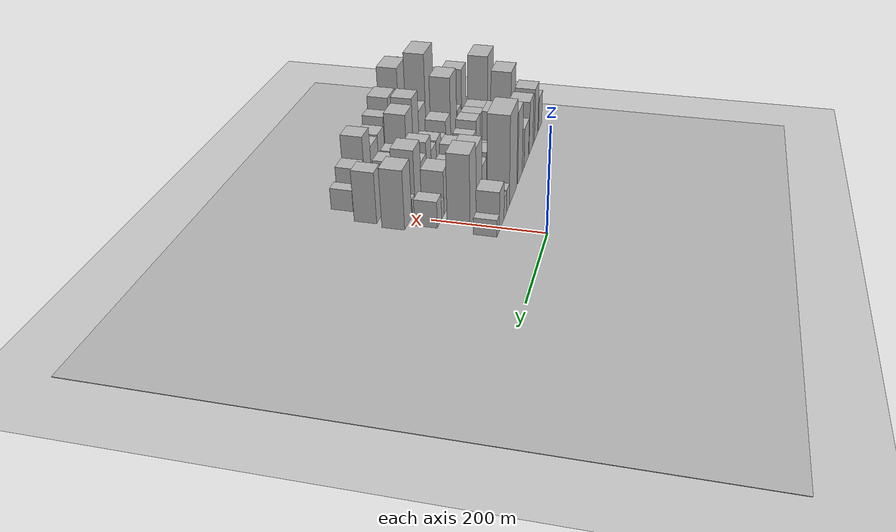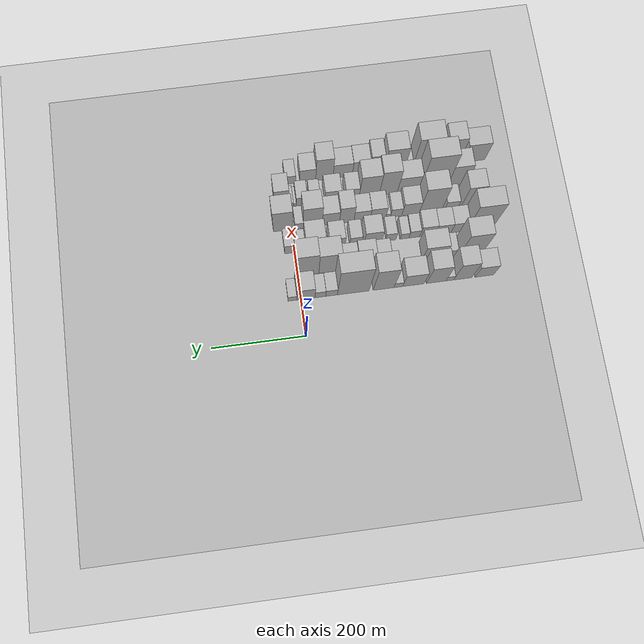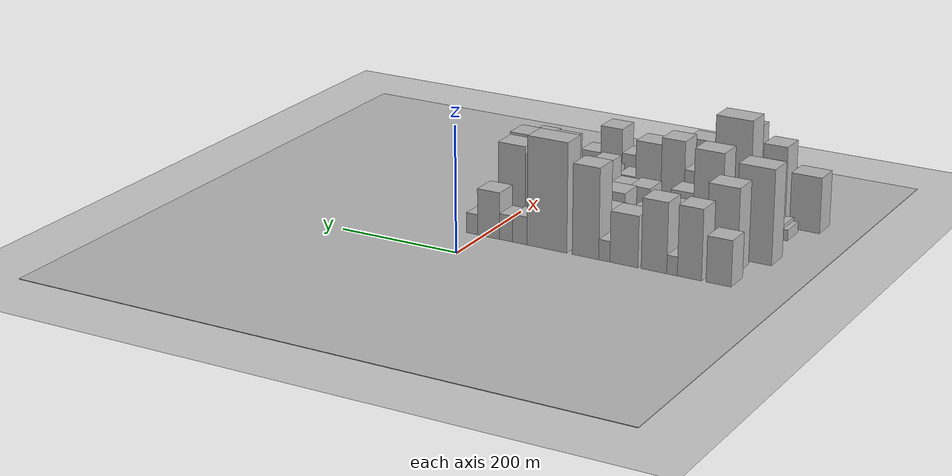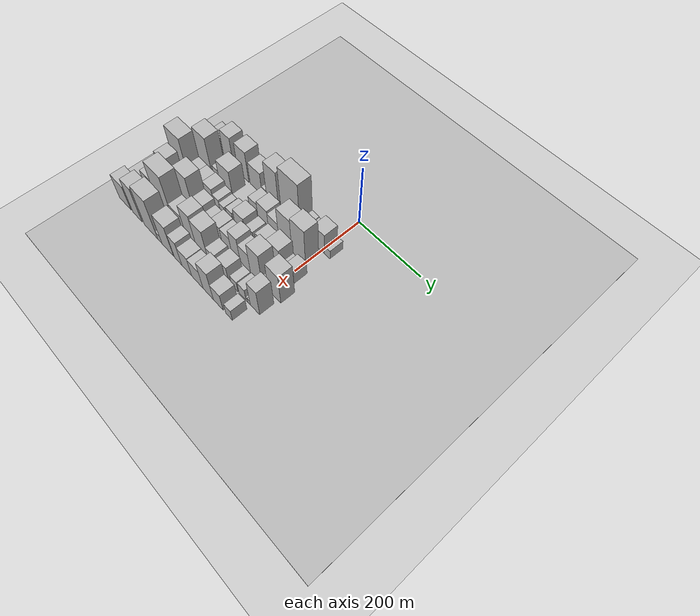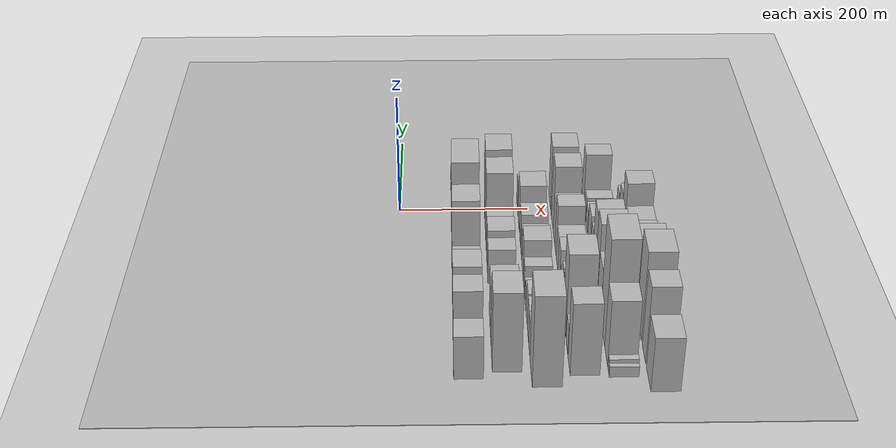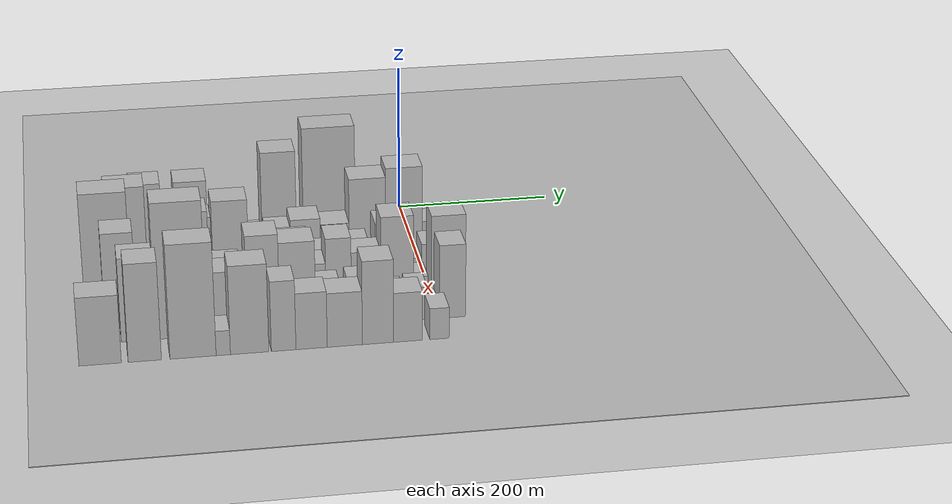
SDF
<sdf version="1.6">
 <world name="default">
  <include><name>ground_plane_1</name><uri>model://HANNAS_ground_plane</uri></include>
  <include>
   <name>ground_plane_2</name>
   <uri>model://HANNAS_ground_plane</uri>
   <pose>100 0 0  0 0 0</pose>
  </include>
  <model name="building_14">
   <static>1</static>
   <pose>100.0000 -390.6195 0 0.000000 0.000000 0.000000</pose>
   <link name="link">
    <pose>0 0 36.00 0 0 0</pose>
    <collision name="collision"><geometry><box><size>40.0000 39.7791 72.0000</size></box></geometry></collision>
    <visual name="visual">
     <cast_shadows>0</cast_shadows>
     <geometry><box><size>40.0000 39.7791 72.0000</size></box></geometry>
     <material>
      <script>
       <uri>model://HANNAS_wall/materials/scripts</uri>
       <uri>model://HANNAS_wall/materials/textures</uri>
       <name>vrc/HANNAS_wall</name>
      </script>
     </material>
    </visual>
   </link>
  </model>
  <model name="building_15">
   <static>1</static>
   <pose>100.0000 -344.3302 0 0.000000 0.000000 0.000000</pose>
   <link name="link">
    <pose>0 0 55.50 0 0 0</pose>
    <collision name="collision"><geometry><box><size>40.0000 38.7995 111.0000</size></box></geometry></collision>
    <visual name="visual">
     <cast_shadows>0</cast_shadows>
     <geometry><box><size>40.0000 38.7995 111.0000</size></box></geometry>
     <material>
      <script>
       <uri>model://HANNAS_wall/materials/scripts</uri>
       <uri>model://HANNAS_wall/materials/textures</uri>
       <name>vrc/HANNAS_wall</name>
      </script>
     </material>
    </visual>
   </link>
  </model>
  <model name="building_16">
   <static>1</static>
   <pose>100.0000 -316.4621 0 0.000000 0.000000 0.000000</pose>
   <link name="link">
    <pose>0 0 15.00 0 0 0</pose>
    <collision name="collision"><geometry><box><size>40.0000 16.9368 30.0000</size></box></geometry></collision>
    <visual name="visual">
     <cast_shadows>0</cast_shadows>
     <geometry><box><size>40.0000 16.9368 30.0000</size></box></geometry>
     <material>
      <script>
       <uri>model://HANNAS_wall/materials/scripts</uri>
       <uri>model://HANNAS_wall/materials/textures</uri>
       <name>vrc/HANNAS_wall</name>
      </script>
     </material>
    </visual>
   </link>
  </model>
  <model name="building_17">
   <static>1</static>
   <pose>100.0000 -287.1883 0 0.000000 0.000000 0.000000</pose>
   <link name="link">
    <pose>0 0 55.50 0 0 0</pose>
    <collision name="collision"><geometry><box><size>40.0000 41.6107 111.0000</size></box></geometry></collision>
    <visual name="visual">
     <cast_shadows>0</cast_shadows>
     <geometry><box><size>40.0000 41.6107 111.0000</size></box></geometry>
     <material>
      <script>
       <uri>model://HANNAS_wall/materials/scripts</uri>
       <uri>model://HANNAS_wall/materials/textures</uri>
       <name>vrc/HANNAS_wall</name>
      </script>
     </material>
    </visual>
   </link>
  </model>
  <model name="building_18">
   <static>1</static>
   <pose>100.0000 -238.3716 0 0.000000 0.000000 0.000000</pose>
   <link name="link">
    <pose>0 0 40.50 0 0 0</pose>
    <collision name="collision"><geometry><box><size>40.0000 46.0228 81.0000</size></box></geometry></collision>
    <visual name="visual">
     <cast_shadows>0</cast_shadows>
     <geometry><box><size>40.0000 46.0228 81.0000</size></box></geometry>
     <material>
      <script>
       <uri>model://HANNAS_wall/materials/scripts</uri>
       <uri>model://HANNAS_wall/materials/textures</uri>
       <name>vrc/HANNAS_wall</name>
      </script>
     </material>
    </visual>
   </link>
  </model>
  <model name="building_19">
   <static>1</static>
   <pose>100.0000 -206.1027 0 0.000000 0.000000 0.000000</pose>
   <link name="link">
    <pose>0 0 16.50 0 0 0</pose>
    <collision name="collision"><geometry><box><size>40.0000 18.5150 33.0000</size></box></geometry></collision>
    <visual name="visual">
     <cast_shadows>0</cast_shadows>
     <geometry><box><size>40.0000 18.5150 33.0000</size></box></geometry>
     <material>
      <script>
       <uri>model://HANNAS_wall/materials/scripts</uri>
       <uri>model://HANNAS_wall/materials/textures</uri>
       <name>vrc/HANNAS_wall</name>
      </script>
     </material>
    </visual>
   </link>
  </model>
  <model name="building_20">
   <static>1</static>
   <pose>100.0000 -174.6314 0 0.000000 0.000000 0.000000</pose>
   <link name="link">
    <pose>0 0 72.00 0 0 0</pose>
    <collision name="collision"><geometry><box><size>40.0000 44.4275 144.0000</size></box></geometry></collision>
    <visual name="visual">
     <cast_shadows>0</cast_shadows>
     <geometry><box><size>40.0000 44.4275 144.0000</size></box></geometry>
     <material>
      <script>
       <uri>model://HANNAS_wall/materials/scripts</uri>
       <uri>model://HANNAS_wall/materials/textures</uri>
       <name>vrc/HANNAS_wall</name>
      </script>
     </material>
    </visual>
   </link>
  </model>
  <model name="building_21">
   <static>1</static>
   <pose>100.0000 -109.7464 0 0.000000 0.000000 0.000000</pose>
   <link name="link">
    <pose>0 0 87.00 0 0 0</pose>
    <collision name="collision"><geometry><box><size>40.0000 67.3426 174.0000</size></box></geometry></collision>
    <visual name="visual">
     <cast_shadows>0</cast_shadows>
     <geometry><box><size>40.0000 67.3426 174.0000</size></box></geometry>
     <material>
      <script>
       <uri>model://HANNAS_wall/materials/scripts</uri>
       <uri>model://HANNAS_wall/materials/textures</uri>
       <name>vrc/HANNAS_wall</name>
      </script>
     </material>
    </visual>
   </link>
  </model>
  <model name="building_22">
   <static>1</static>
   <pose>100.0000 -63.6929 0 0.000000 0.000000 0.000000</pose>
   <link name="link">
    <pose>0 0 22.50 0 0 0</pose>
    <collision name="collision"><geometry><box><size>40.0000 24.7644 45.0000</size></box></geometry></collision>
    <visual name="visual">
     <cast_shadows>0</cast_shadows>
     <geometry><box><size>40.0000 24.7644 45.0000</size></box></geometry>
     <material>
      <script>
       <uri>model://HANNAS_wall/materials/scripts</uri>
       <uri>model://HANNAS_wall/materials/textures</uri>
       <name>vrc/HANNAS_wall</name>
      </script>
     </material>
    </visual>
   </link>
  </model>
  <model name="building_23">
   <static>1</static>
   <pose>100.0000 -40.1029 0 0.000000 0.000000 0.000000</pose>
   <link name="link">
    <pose>0 0 21.00 0 0 0</pose>
    <collision name="collision"><geometry><box><size>40.0000 22.4156 42.0000</size></box></geometry></collision>
    <visual name="visual">
     <cast_shadows>0</cast_shadows>
     <geometry><box><size>40.0000 22.4156 42.0000</size></box></geometry>
     <material>
      <script>
       <uri>model://HANNAS_wall/materials/scripts</uri>
       <uri>model://HANNAS_wall/materials/textures</uri>
       <name>vrc/HANNAS_wall</name>
      </script>
     </material>
    </visual>
   </link>
  </model>
  <model name="building_24">
   <static>1</static>
   <pose>100.0000 -9.5780 0 0.000000 0.000000 0.000000</pose>
   <link name="link">
    <pose>0 0 37.50 0 0 0</pose>
    <collision name="collision"><geometry><box><size>40.0000 38.6341 75.0000</size></box></geometry></collision>
    <visual name="visual">
     <cast_shadows>0</cast_shadows>
     <geometry><box><size>40.0000 38.6341 75.0000</size></box></geometry>
     <material>
      <script>
       <uri>model://HANNAS_wall/materials/scripts</uri>
       <uri>model://HANNAS_wall/materials/textures</uri>
       <name>vrc/HANNAS_wall</name>
      </script>
     </material>
    </visual>
   </link>
  </model>
  <model name="building_25">
   <static>1</static>
   <pose>100.0000 19.1603 0 0.000000 0.000000 0.000000</pose>
   <link name="link">
    <pose>0 0 16.50 0 0 0</pose>
    <collision name="collision"><geometry><box><size>40.0000 18.8425 33.0000</size></box></geometry></collision>
    <visual name="visual">
     <cast_shadows>0</cast_shadows>
     <geometry><box><size>40.0000 18.8425 33.0000</size></box></geometry>
     <material>
      <script>
       <uri>model://HANNAS_wall/materials/scripts</uri>
       <uri>model://HANNAS_wall/materials/textures</uri>
       <name>vrc/HANNAS_wall</name>
      </script>
     </material>
    </visual>
   </link>
  </model>
  <model name="building_63">
   <static>1</static>
   <pose>152.0000 -371.8332 0 0.000000 0.000000 0.000000</pose>
   <link name="link">
    <pose>0 0 66.00 0 0 0</pose>
    <collision name="collision"><geometry><box><size>40.0000 49.9071 132.0000</size></box></geometry></collision>
    <visual name="visual">
     <cast_shadows>0</cast_shadows>
     <geometry><box><size>40.0000 49.9071 132.0000</size></box></geometry>
     <material>
      <script>
       <uri>model://HANNAS_wall/materials/scripts</uri>
       <uri>model://HANNAS_wall/materials/textures</uri>
       <name>vrc/HANNAS_wall</name>
      </script>
     </material>
    </visual>
   </link>
  </model>
  <model name="building_64">
   <static>1</static>
   <pose>152.0000 -326.9724 0 0.000000 0.000000 0.000000</pose>
   <link name="link">
    <pose>0 0 21.00 0 0 0</pose>
    <collision name="collision"><geometry><box><size>40.0000 23.8145 42.0000</size></box></geometry></collision>
    <visual name="visual">
     <cast_shadows>0</cast_shadows>
     <geometry><box><size>40.0000 23.8145 42.0000</size></box></geometry>
     <material>
      <script>
       <uri>model://HANNAS_wall/materials/scripts</uri>
       <uri>model://HANNAS_wall/materials/textures</uri>
       <name>vrc/HANNAS_wall</name>
      </script>
     </material>
    </visual>
   </link>
  </model>
  <model name="building_65">
   <static>1</static>
   <pose>152.0000 -290.4627 0 0.000000 0.000000 0.000000</pose>
   <link name="link">
    <pose>0 0 42.00 0 0 0</pose>
    <collision name="collision"><geometry><box><size>40.0000 49.2048 84.0000</size></box></geometry></collision>
    <visual name="visual">
     <cast_shadows>0</cast_shadows>
     <geometry><box><size>40.0000 49.2048 84.0000</size></box></geometry>
     <material>
      <script>
       <uri>model://HANNAS_wall/materials/scripts</uri>
       <uri>model://HANNAS_wall/materials/textures</uri>
       <name>vrc/HANNAS_wall</name>
      </script>
     </material>
    </visual>
   </link>
  </model>
  <model name="building_66">
   <static>1</static>
   <pose>152.0000 -181.2605 0 0.000000 0.000000 0.000000</pose>
   <link name="link">
    <pose>0 0 30.00 0 0 0</pose>
    <collision name="collision"><geometry><box><size>40.0000 31.0666 60.0000</size></box></geometry></collision>
    <visual name="visual">
     <cast_shadows>0</cast_shadows>
     <geometry><box><size>40.0000 31.0666 60.0000</size></box></geometry>
     <material>
      <script>
       <uri>model://HANNAS_wall/materials/scripts</uri>
       <uri>model://HANNAS_wall/materials/textures</uri>
       <name>vrc/HANNAS_wall</name>
      </script>
     </material>
    </visual>
   </link>
  </model>
  <model name="building_67">
   <static>1</static>
   <pose>152.0000 -146.7193 0 0.000000 0.000000 0.000000</pose>
   <link name="link">
    <pose>0 0 36.00 0 0 0</pose>
    <collision name="collision"><geometry><box><size>40.0000 38.0157 72.0000</size></box></geometry></collision>
    <visual name="visual">
     <cast_shadows>0</cast_shadows>
     <geometry><box><size>40.0000 38.0157 72.0000</size></box></geometry>
     <material>
      <script>
       <uri>model://HANNAS_wall/materials/scripts</uri>
       <uri>model://HANNAS_wall/materials/textures</uri>
       <name>vrc/HANNAS_wall</name>
      </script>
     </material>
    </visual>
   </link>
  </model>
  <model name="building_68">
   <static>1</static>
   <pose>152.0000 -109.2547 0 0.000000 0.000000 0.000000</pose>
   <link name="link">
    <pose>0 0 31.50 0 0 0</pose>
    <collision name="collision"><geometry><box><size>40.0000 36.9136 63.0000</size></box></geometry></collision>
    <visual name="visual">
     <cast_shadows>0</cast_shadows>
     <geometry><box><size>40.0000 36.9136 63.0000</size></box></geometry>
     <material>
      <script>
       <uri>model://HANNAS_wall/materials/scripts</uri>
       <uri>model://HANNAS_wall/materials/textures</uri>
       <name>vrc/HANNAS_wall</name>
      </script>
     </material>
    </visual>
   </link>
  </model>
  <model name="building_69">
   <static>1</static>
   <pose>152.0000 -67.3861 0 0.000000 0.000000 0.000000</pose>
   <link name="link">
    <pose>0 0 61.50 0 0 0</pose>
    <collision name="collision"><geometry><box><size>40.0000 46.8236 123.0000</size></box></geometry></collision>
    <visual name="visual">
     <cast_shadows>0</cast_shadows>
     <geometry><box><size>40.0000 46.8236 123.0000</size></box></geometry>
     <material>
      <script>
       <uri>model://HANNAS_wall/materials/scripts</uri>
       <uri>model://HANNAS_wall/materials/textures</uri>
       <name>vrc/HANNAS_wall</name>
      </script>
     </material>
    </visual>
   </link>
  </model>
  <model name="building_70">
   <static>1</static>
   <pose>152.0000 -20.4230 0 0.000000 0.000000 0.000000</pose>
   <link name="link">
    <pose>0 0 67.50 0 0 0</pose>
    <collision name="collision"><geometry><box><size>40.0000 47.1026 135.0000</size></box></geometry></collision>
    <visual name="visual">
     <cast_shadows>0</cast_shadows>
     <geometry><box><size>40.0000 47.1026 135.0000</size></box></geometry>
     <material>
      <script>
       <uri>model://HANNAS_wall/materials/scripts</uri>
       <uri>model://HANNAS_wall/materials/textures</uri>
       <name>vrc/HANNAS_wall</name>
      </script>
     </material>
    </visual>
   </link>
  </model>
  <model name="building_107">
   <static>1</static>
   <pose>204.0000 -399.4127 0 0.000000 0.000000 0.000000</pose>
   <link name="link">
    <pose>0 0 75.00 0 0 0</pose>
    <collision name="collision"><geometry><box><size>40.0000 57.7861 150.0000</size></box></geometry></collision>
    <visual name="visual">
     <cast_shadows>0</cast_shadows>
     <geometry><box><size>40.0000 57.7861 150.0000</size></box></geometry>
     <material>
      <script>
       <uri>model://HANNAS_wall/materials/scripts</uri>
       <uri>model://HANNAS_wall/materials/textures</uri>
       <name>vrc/HANNAS_wall</name>
      </script>
     </material>
    </visual>
   </link>
  </model>
  <model name="building_108">
   <static>1</static>
   <pose>204.0000 -353.8199 0 0.000000 0.000000 0.000000</pose>
   <link name="link">
    <pose>0 0 28.50 0 0 0</pose>
    <collision name="collision"><geometry><box><size>40.0000 33.3994 57.0000</size></box></geometry></collision>
    <visual name="visual">
     <cast_shadows>0</cast_shadows>
     <geometry><box><size>40.0000 33.3994 57.0000</size></box></geometry>
     <material>
      <script>
       <uri>model://HANNAS_wall/materials/scripts</uri>
       <uri>model://HANNAS_wall/materials/textures</uri>
       <name>vrc/HANNAS_wall</name>
      </script>
     </material>
    </visual>
   </link>
  </model>
  <model name="building_109">
   <static>1</static>
   <pose>204.0000 -320.0826 0 0.000000 0.000000 0.000000</pose>
   <link name="link">
    <pose>0 0 28.50 0 0 0</pose>
    <collision name="collision"><geometry><box><size>40.0000 34.0753 57.0000</size></box></geometry></collision>
    <visual name="visual">
     <cast_shadows>0</cast_shadows>
     <geometry><box><size>40.0000 34.0753 57.0000</size></box></geometry>
     <material>
      <script>
       <uri>model://HANNAS_wall/materials/scripts</uri>
       <uri>model://HANNAS_wall/materials/textures</uri>
       <name>vrc/HANNAS_wall</name>
      </script>
     </material>
    </visual>
   </link>
  </model>
  <model name="building_110">
   <static>1</static>
   <pose>204.0000 -286.0945 0 0.000000 0.000000 0.000000</pose>
   <link name="link">
    <pose>0 0 30.00 0 0 0</pose>
    <collision name="collision"><geometry><box><size>40.0000 33.9009 60.0000</size></box></geometry></collision>
    <visual name="visual">
     <cast_shadows>0</cast_shadows>
     <geometry><box><size>40.0000 33.9009 60.0000</size></box></geometry>
     <material>
      <script>
       <uri>model://HANNAS_wall/materials/scripts</uri>
       <uri>model://HANNAS_wall/materials/textures</uri>
       <name>vrc/HANNAS_wall</name>
      </script>
     </material>
    </visual>
   </link>
  </model>
  <model name="building_111">
   <static>1</static>
   <pose>204.0000 -257.3165 0 0.000000 0.000000 0.000000</pose>
   <link name="link">
    <pose>0 0 21.00 0 0 0</pose>
    <collision name="collision"><geometry><box><size>40.0000 23.6551 42.0000</size></box></geometry></collision>
    <visual name="visual">
     <cast_shadows>0</cast_shadows>
     <geometry><box><size>40.0000 23.6551 42.0000</size></box></geometry>
     <material>
      <script>
       <uri>model://HANNAS_wall/materials/scripts</uri>
       <uri>model://HANNAS_wall/materials/textures</uri>
       <name>vrc/HANNAS_wall</name>
      </script>
     </material>
    </visual>
   </link>
  </model>
  <model name="building_112">
   <static>1</static>
   <pose>204.0000 -235.9057 0 0.000000 0.000000 0.000000</pose>
   <link name="link">
    <pose>0 0 16.50 0 0 0</pose>
    <collision name="collision"><geometry><box><size>40.0000 19.1666 33.0000</size></box></geometry></collision>
    <visual name="visual">
     <cast_shadows>0</cast_shadows>
     <geometry><box><size>40.0000 19.1666 33.0000</size></box></geometry>
     <material>
      <script>
       <uri>model://HANNAS_wall/materials/scripts</uri>
       <uri>model://HANNAS_wall/materials/textures</uri>
       <name>vrc/HANNAS_wall</name>
      </script>
     </material>
    </visual>
   </link>
  </model>
  <model name="building_113">
   <static>1</static>
   <pose>204.0000 -205.6547 0 0.000000 0.000000 0.000000</pose>
   <link name="link">
    <pose>0 0 22.50 0 0 0</pose>
    <collision name="collision"><geometry><box><size>40.0000 23.3354 45.0000</size></box></geometry></collision>
    <visual name="visual">
     <cast_shadows>0</cast_shadows>
     <geometry><box><size>40.0000 23.3354 45.0000</size></box></geometry>
     <material>
      <script>
       <uri>model://HANNAS_wall/materials/scripts</uri>
       <uri>model://HANNAS_wall/materials/textures</uri>
       <name>vrc/HANNAS_wall</name>
      </script>
     </material>
    </visual>
   </link>
  </model>
  <model name="building_114">
   <static>1</static>
   <pose>204.0000 -190.3510 0 0.000000 0.000000 0.000000</pose>
   <link name="link">
    <pose>0 0 7.50 0 0 0</pose>
    <collision name="collision"><geometry><box><size>40.0000 7.2720 15.0000</size></box></geometry></collision>
    <visual name="visual">
     <cast_shadows>0</cast_shadows>
     <geometry><box><size>40.0000 7.2720 15.0000</size></box></geometry>
     <material>
      <script>
       <uri>model://HANNAS_wall/materials/scripts</uri>
       <uri>model://HANNAS_wall/materials/textures</uri>
       <name>vrc/HANNAS_wall</name>
      </script>
     </material>
    </visual>
   </link>
  </model>
  <model name="building_115">
   <static>1</static>
   <pose>204.0000 -167.6147 0 0.000000 0.000000 0.000000</pose>
   <link name="link">
    <pose>0 0 34.50 0 0 0</pose>
    <collision name="collision"><geometry><box><size>40.0000 38.2006 69.0000</size></box></geometry></collision>
    <visual name="visual">
     <cast_shadows>0</cast_shadows>
     <geometry><box><size>40.0000 38.2006 69.0000</size></box></geometry>
     <material>
      <script>
       <uri>model://HANNAS_wall/materials/scripts</uri>
       <uri>model://HANNAS_wall/materials/textures</uri>
       <name>vrc/HANNAS_wall</name>
      </script>
     </material>
    </visual>
   </link>
  </model>
  <model name="building_116">
   <static>1</static>
   <pose>204.0000 -130.4117 0 0.000000 0.000000 0.000000</pose>
   <link name="link">
    <pose>0 0 25.50 0 0 0</pose>
    <collision name="collision"><geometry><box><size>40.0000 26.2053 51.0000</size></box></geometry></collision>
    <visual name="visual">
     <cast_shadows>0</cast_shadows>
     <geometry><box><size>40.0000 26.2053 51.0000</size></box></geometry>
     <material>
      <script>
       <uri>model://HANNAS_wall/materials/scripts</uri>
       <uri>model://HANNAS_wall/materials/textures</uri>
       <name>vrc/HANNAS_wall</name>
      </script>
     </material>
    </visual>
   </link>
  </model>
  <model name="building_117">
   <static>1</static>
   <pose>204.0000 -90.1696 0 0.000000 0.000000 0.000000</pose>
   <link name="link">
    <pose>0 0 30.00 0 0 0</pose>
    <collision name="collision"><geometry><box><size>40.0000 34.2790 60.0000</size></box></geometry></collision>
    <visual name="visual">
     <cast_shadows>0</cast_shadows>
     <geometry><box><size>40.0000 34.2790 60.0000</size></box></geometry>
     <material>
      <script>
       <uri>model://HANNAS_wall/materials/scripts</uri>
       <uri>model://HANNAS_wall/materials/textures</uri>
       <name>vrc/HANNAS_wall</name>
      </script>
     </material>
    </visual>
   </link>
  </model>
  <model name="building_118">
   <static>1</static>
   <pose>204.0000 -43.9222 0 0.000000 0.000000 0.000000</pose>
   <link name="link">
    <pose>0 0 42.00 0 0 0</pose>
    <collision name="collision"><geometry><box><size>40.0000 42.2157 84.0000</size></box></geometry></collision>
    <visual name="visual">
     <cast_shadows>0</cast_shadows>
     <geometry><box><size>40.0000 42.2157 84.0000</size></box></geometry>
     <material>
      <script>
       <uri>model://HANNAS_wall/materials/scripts</uri>
       <uri>model://HANNAS_wall/materials/textures</uri>
       <name>vrc/HANNAS_wall</name>
      </script>
     </material>
    </visual>
   </link>
  </model>
  <model name="building_119">
   <static>1</static>
   <pose>204.0000 -14.4327 0 0.000000 0.000000 0.000000</pose>
   <link name="link">
    <pose>0 0 16.50 0 0 0</pose>
    <collision name="collision"><geometry><box><size>40.0000 16.7633 33.0000</size></box></geometry></collision>
    <visual name="visual">
     <cast_shadows>0</cast_shadows>
     <geometry><box><size>40.0000 16.7633 33.0000</size></box></geometry>
     <material>
      <script>
       <uri>model://HANNAS_wall/materials/scripts</uri>
       <uri>model://HANNAS_wall/materials/textures</uri>
       <name>vrc/HANNAS_wall</name>
      </script>
     </material>
    </visual>
   </link>
  </model>
  <model name="building_120">
   <static>1</static>
   <pose>204.0000 8.2425 0 0.000000 0.000000 0.000000</pose>
   <link name="link">
    <pose>0 0 25.50 0 0 0</pose>
    <collision name="collision"><geometry><box><size>40.0000 28.5871 51.0000</size></box></geometry></collision>
    <visual name="visual">
     <cast_shadows>0</cast_shadows>
     <geometry><box><size>40.0000 28.5871 51.0000</size></box></geometry>
     <material>
      <script>
       <uri>model://HANNAS_wall/materials/scripts</uri>
       <uri>model://HANNAS_wall/materials/textures</uri>
       <name>vrc/HANNAS_wall</name>
      </script>
     </material>
    </visual>
   </link>
  </model>
  <model name="building_158">
   <static>1</static>
   <pose>256.0000 -385.9003 0 0.000000 0.000000 0.000000</pose>
   <link name="link">
    <pose>0 0 60.00 0 0 0</pose>
    <collision name="collision"><geometry><box><size>40.0000 38.7063 120.0000</size></box></geometry></collision>
    <visual name="visual">
     <cast_shadows>0</cast_shadows>
     <geometry><box><size>40.0000 38.7063 120.0000</size></box></geometry>
     <material>
      <script>
       <uri>model://HANNAS_wall/materials/scripts</uri>
       <uri>model://HANNAS_wall/materials/textures</uri>
       <name>vrc/HANNAS_wall</name>
      </script>
     </material>
    </visual>
   </link>
  </model>
  <model name="building_159">
   <static>1</static>
   <pose>256.0000 -346.1716 0 0.000000 0.000000 0.000000</pose>
   <link name="link">
    <pose>0 0 24.00 0 0 0</pose>
    <collision name="collision"><geometry><box><size>40.0000 28.7510 48.0000</size></box></geometry></collision>
    <visual name="visual">
     <cast_shadows>0</cast_shadows>
     <geometry><box><size>40.0000 28.7510 48.0000</size></box></geometry>
     <material>
      <script>
       <uri>model://HANNAS_wall/materials/scripts</uri>
       <uri>model://HANNAS_wall/materials/textures</uri>
       <name>vrc/HANNAS_wall</name>
      </script>
     </material>
    </visual>
   </link>
  </model>
  <model name="building_160">
   <static>1</static>
   <pose>256.0000 -300.4626 0 0.000000 0.000000 0.000000</pose>
   <link name="link">
    <pose>0 0 70.50 0 0 0</pose>
    <collision name="collision"><geometry><box><size>40.0000 48.6669 141.0000</size></box></geometry></collision>
    <visual name="visual">
     <cast_shadows>0</cast_shadows>
     <geometry><box><size>40.0000 48.6669 141.0000</size></box></geometry>
     <material>
      <script>
       <uri>model://HANNAS_wall/materials/scripts</uri>
       <uri>model://HANNAS_wall/materials/textures</uri>
       <name>vrc/HANNAS_wall</name>
      </script>
     </material>
    </visual>
   </link>
  </model>
  <model name="building_161">
   <static>1</static>
   <pose>256.0000 -257.2404 0 0.000000 0.000000 0.000000</pose>
   <link name="link">
    <pose>0 0 34.50 0 0 0</pose>
    <collision name="collision"><geometry><box><size>40.0000 37.7776 69.0000</size></box></geometry></collision>
    <visual name="visual">
     <cast_shadows>0</cast_shadows>
     <geometry><box><size>40.0000 37.7776 69.0000</size></box></geometry>
     <material>
      <script>
       <uri>model://HANNAS_wall/materials/scripts</uri>
       <uri>model://HANNAS_wall/materials/textures</uri>
       <name>vrc/HANNAS_wall</name>
      </script>
     </material>
    </visual>
   </link>
  </model>
  <model name="building_162">
   <static>1</static>
   <pose>256.0000 -225.9784 0 0.000000 0.000000 0.000000</pose>
   <link name="link">
    <pose>0 0 22.50 0 0 0</pose>
    <collision name="collision"><geometry><box><size>40.0000 24.7464 45.0000</size></box></geometry></collision>
    <visual name="visual">
     <cast_shadows>0</cast_shadows>
     <geometry><box><size>40.0000 24.7464 45.0000</size></box></geometry>
     <material>
      <script>
       <uri>model://HANNAS_wall/materials/scripts</uri>
       <uri>model://HANNAS_wall/materials/textures</uri>
       <name>vrc/HANNAS_wall</name>
      </script>
     </material>
    </visual>
   </link>
  </model>
  <model name="building_163">
   <static>1</static>
   <pose>256.0000 -208.5320 0 0.000000 0.000000 0.000000</pose>
   <link name="link">
    <pose>0 0 10.50 0 0 0</pose>
    <collision name="collision"><geometry><box><size>40.0000 10.1464 21.0000</size></box></geometry></collision>
    <visual name="visual">
     <cast_shadows>0</cast_shadows>
     <geometry><box><size>40.0000 10.1464 21.0000</size></box></geometry>
     <material>
      <script>
       <uri>model://HANNAS_wall/materials/scripts</uri>
       <uri>model://HANNAS_wall/materials/textures</uri>
       <name>vrc/HANNAS_wall</name>
      </script>
     </material>
    </visual>
   </link>
  </model>
  <model name="building_164">
   <static>1</static>
   <pose>256.0000 -186.3960 0 0.000000 0.000000 0.000000</pose>
   <link name="link">
    <pose>0 0 31.50 0 0 0</pose>
    <collision name="collision"><geometry><box><size>40.0000 34.1256 63.0000</size></box></geometry></collision>
    <visual name="visual">
     <cast_shadows>0</cast_shadows>
     <geometry><box><size>40.0000 34.1256 63.0000</size></box></geometry>
     <material>
      <script>
       <uri>model://HANNAS_wall/materials/scripts</uri>
       <uri>model://HANNAS_wall/materials/textures</uri>
       <name>vrc/HANNAS_wall</name>
      </script>
     </material>
    </visual>
   </link>
  </model>
  <model name="building_165">
   <static>1</static>
   <pose>256.0000 -151.6770 0 0.000000 0.000000 0.000000</pose>
   <link name="link">
    <pose>0 0 30.00 0 0 0</pose>
    <collision name="collision"><geometry><box><size>40.0000 35.3124 60.0000</size></box></geometry></collision>
    <visual name="visual">
     <cast_shadows>0</cast_shadows>
     <geometry><box><size>40.0000 35.3124 60.0000</size></box></geometry>
     <material>
      <script>
       <uri>model://HANNAS_wall/materials/scripts</uri>
       <uri>model://HANNAS_wall/materials/textures</uri>
       <name>vrc/HANNAS_wall</name>
      </script>
     </material>
    </visual>
   </link>
  </model>
  <model name="building_166">
   <static>1</static>
   <pose>256.0000 -118.1718 0 0.000000 0.000000 0.000000</pose>
   <link name="link">
    <pose>0 0 46.50 0 0 0</pose>
    <collision name="collision"><geometry><box><size>40.0000 31.6980 93.0000</size></box></geometry></collision>
    <visual name="visual">
     <cast_shadows>0</cast_shadows>
     <geometry><box><size>40.0000 31.6980 93.0000</size></box></geometry>
     <material>
      <script>
       <uri>model://HANNAS_wall/materials/scripts</uri>
       <uri>model://HANNAS_wall/materials/textures</uri>
       <name>vrc/HANNAS_wall</name>
      </script>
     </material>
    </visual>
   </link>
  </model>
  <model name="building_167">
   <static>1</static>
   <pose>256.0000 -83.9338 0 0.000000 0.000000 0.000000</pose>
   <link name="link">
    <pose>0 0 36.00 0 0 0</pose>
    <collision name="collision"><geometry><box><size>40.0000 36.7781 72.0000</size></box></geometry></collision>
    <visual name="visual">
     <cast_shadows>0</cast_shadows>
     <geometry><box><size>40.0000 36.7781 72.0000</size></box></geometry>
     <material>
      <script>
       <uri>model://HANNAS_wall/materials/scripts</uri>
       <uri>model://HANNAS_wall/materials/textures</uri>
       <name>vrc/HANNAS_wall</name>
      </script>
     </material>
    </visual>
   </link>
  </model>
  <model name="building_168">
   <static>1</static>
   <pose>256.0000 -45.1205 0 0.000000 0.000000 0.000000</pose>
   <link name="link">
    <pose>0 0 58.50 0 0 0</pose>
    <collision name="collision"><geometry><box><size>40.0000 40.8484 117.0000</size></box></geometry></collision>
    <visual name="visual">
     <cast_shadows>0</cast_shadows>
     <geometry><box><size>40.0000 40.8484 117.0000</size></box></geometry>
     <material>
      <script>
       <uri>model://HANNAS_wall/materials/scripts</uri>
       <uri>model://HANNAS_wall/materials/textures</uri>
       <name>vrc/HANNAS_wall</name>
      </script>
     </material>
    </visual>
   </link>
  </model>
  <model name="building_169">
   <static>1</static>
   <pose>256.0000 -15.5825 0 0.000000 0.000000 0.000000</pose>
   <link name="link">
    <pose>0 0 16.50 0 0 0</pose>
    <collision name="collision"><geometry><box><size>40.0000 18.2276 33.0000</size></box></geometry></collision>
    <visual name="visual">
     <cast_shadows>0</cast_shadows>
     <geometry><box><size>40.0000 18.2276 33.0000</size></box></geometry>
     <material>
      <script>
       <uri>model://HANNAS_wall/materials/scripts</uri>
       <uri>model://HANNAS_wall/materials/textures</uri>
       <name>vrc/HANNAS_wall</name>
      </script>
     </material>
    </visual>
   </link>
  </model>
  <model name="building_170">
   <static>1</static>
   <pose>256.0000 18.9138 0 0.000000 0.000000 0.000000</pose>
   <link name="link">
    <pose>0 0 57.00 0 0 0</pose>
    <collision name="collision"><geometry><box><size>40.0000 42.7650 114.0000</size></box></geometry></collision>
    <visual name="visual">
     <cast_shadows>0</cast_shadows>
     <geometry><box><size>40.0000 42.7650 114.0000</size></box></geometry>
     <material>
      <script>
       <uri>model://HANNAS_wall/materials/scripts</uri>
       <uri>model://HANNAS_wall/materials/textures</uri>
       <name>vrc/HANNAS_wall</name>
      </script>
     </material>
    </visual>
   </link>
  </model>
  <model name="building_208">
   <static>1</static>
   <pose>308.0000 -405.4737 0 0.000000 0.000000 0.000000</pose>
   <link name="link">
    <pose>0 0 9.00 0 0 0</pose>
    <collision name="collision"><geometry><box><size>40.0000 7.7814 18.0000</size></box></geometry></collision>
    <visual name="visual">
     <cast_shadows>0</cast_shadows>
     <geometry><box><size>40.0000 7.7814 18.0000</size></box></geometry>
     <material>
      <script>
       <uri>model://HANNAS_wall/materials/scripts</uri>
       <uri>model://HANNAS_wall/materials/textures</uri>
       <name>vrc/HANNAS_wall</name>
      </script>
     </material>
    </visual>
   </link>
  </model>
  <model name="building_209">
   <static>1</static>
   <pose>308.0000 -396.2074 0 0.000000 0.000000 0.000000</pose>
   <link name="link">
    <pose>0 0 12.00 0 0 0</pose>
    <collision name="collision"><geometry><box><size>40.0000 10.7511 24.0000</size></box></geometry></collision>
    <visual name="visual">
     <cast_shadows>0</cast_shadows>
     <geometry><box><size>40.0000 10.7511 24.0000</size></box></geometry>
     <material>
      <script>
       <uri>model://HANNAS_wall/materials/scripts</uri>
       <uri>model://HANNAS_wall/materials/textures</uri>
       <name>vrc/HANNAS_wall</name>
      </script>
     </material>
    </visual>
   </link>
  </model>
  <model name="building_210">
   <static>1</static>
   <pose>308.0000 -367.0975 0 0.000000 0.000000 0.000000</pose>
   <link name="link">
    <pose>0 0 55.50 0 0 0</pose>
    <collision name="collision"><geometry><box><size>40.0000 41.4688 111.0000</size></box></geometry></collision>
    <visual name="visual">
     <cast_shadows>0</cast_shadows>
     <geometry><box><size>40.0000 41.4688 111.0000</size></box></geometry>
     <material>
      <script>
       <uri>model://HANNAS_wall/materials/scripts</uri>
       <uri>model://HANNAS_wall/materials/textures</uri>
       <name>vrc/HANNAS_wall</name>
      </script>
     </material>
    </visual>
   </link>
  </model>
  <model name="building_211">
   <static>1</static>
   <pose>308.0000 -316.0216 0 0.000000 0.000000 0.000000</pose>
   <link name="link">
    <pose>0 0 90.00 0 0 0</pose>
    <collision name="collision"><geometry><box><size>40.0000 60.6829 180.0000</size></box></geometry></collision>
    <visual name="visual">
     <cast_shadows>0</cast_shadows>
     <geometry><box><size>40.0000 60.6829 180.0000</size></box></geometry>
     <material>
      <script>
       <uri>model://HANNAS_wall/materials/scripts</uri>
       <uri>model://HANNAS_wall/materials/textures</uri>
       <name>vrc/HANNAS_wall</name>
      </script>
     </material>
    </visual>
   </link>
  </model>
  <model name="building_212">
   <static>1</static>
   <pose>308.0000 -260.9920 0 0.000000 0.000000 0.000000</pose>
   <link name="link">
    <pose>0 0 42.00 0 0 0</pose>
    <collision name="collision"><geometry><box><size>40.0000 49.3765 84.0000</size></box></geometry></collision>
    <visual name="visual">
     <cast_shadows>0</cast_shadows>
     <geometry><box><size>40.0000 49.3765 84.0000</size></box></geometry>
     <material>
      <script>
       <uri>model://HANNAS_wall/materials/scripts</uri>
       <uri>model://HANNAS_wall/materials/textures</uri>
       <name>vrc/HANNAS_wall</name>
      </script>
     </material>
    </visual>
   </link>
  </model>
  <model name="building_213">
   <static>1</static>
   <pose>308.0000 -216.5000 0 0.000000 0.000000 0.000000</pose>
   <link name="link">
    <pose>0 0 64.50 0 0 0</pose>
    <collision name="collision"><geometry><box><size>40.0000 39.6074 129.0000</size></box></geometry></collision>
    <visual name="visual">
     <cast_shadows>0</cast_shadows>
     <geometry><box><size>40.0000 39.6074 129.0000</size></box></geometry>
     <material>
      <script>
       <uri>model://HANNAS_wall/materials/scripts</uri>
       <uri>model://HANNAS_wall/materials/textures</uri>
       <name>vrc/HANNAS_wall</name>
      </script>
     </material>
    </visual>
   </link>
  </model>
  <model name="building_214">
   <static>1</static>
   <pose>308.0000 -174.8145 0 0.000000 0.000000 0.000000</pose>
   <link name="link">
    <pose>0 0 58.50 0 0 0</pose>
    <collision name="collision"><geometry><box><size>40.0000 43.7637 117.0000</size></box></geometry></collision>
    <visual name="visual">
     <cast_shadows>0</cast_shadows>
     <geometry><box><size>40.0000 43.7637 117.0000</size></box></geometry>
     <material>
      <script>
       <uri>model://HANNAS_wall/materials/scripts</uri>
       <uri>model://HANNAS_wall/materials/textures</uri>
       <name>vrc/HANNAS_wall</name>
      </script>
     </material>
    </visual>
   </link>
  </model>
  <model name="building_215">
   <static>1</static>
   <pose>308.0000 -137.7593 0 0.000000 0.000000 0.000000</pose>
   <link name="link">
    <pose>0 0 28.50 0 0 0</pose>
    <collision name="collision"><geometry><box><size>40.0000 30.3467 57.0000</size></box></geometry></collision>
    <visual name="visual">
     <cast_shadows>0</cast_shadows>
     <geometry><box><size>40.0000 30.3467 57.0000</size></box></geometry>
     <material>
      <script>
       <uri>model://HANNAS_wall/materials/scripts</uri>
       <uri>model://HANNAS_wall/materials/textures</uri>
       <name>vrc/HANNAS_wall</name>
      </script>
     </material>
    </visual>
   </link>
  </model>
  <model name="building_216">
   <static>1</static>
   <pose>308.0000 -95.8387 0 0.000000 0.000000 0.000000</pose>
   <link name="link">
    <pose>0 0 30.00 0 0 0</pose>
    <collision name="collision"><geometry><box><size>40.0000 35.4945 60.0000</size></box></geometry></collision>
    <visual name="visual">
     <cast_shadows>0</cast_shadows>
     <geometry><box><size>40.0000 35.4945 60.0000</size></box></geometry>
     <material>
      <script>
       <uri>model://HANNAS_wall/materials/scripts</uri>
       <uri>model://HANNAS_wall/materials/textures</uri>
       <name>vrc/HANNAS_wall</name>
      </script>
     </material>
    </visual>
   </link>
  </model>
  <model name="building_217">
   <static>1</static>
   <pose>308.0000 -56.4118 0 0.000000 0.000000 0.000000</pose>
   <link name="link">
    <pose>0 0 21.00 0 0 0</pose>
    <collision name="collision"><geometry><box><size>40.0000 23.3593 42.0000</size></box></geometry></collision>
    <visual name="visual">
     <cast_shadows>0</cast_shadows>
     <geometry><box><size>40.0000 23.3593 42.0000</size></box></geometry>
     <material>
      <script>
       <uri>model://HANNAS_wall/materials/scripts</uri>
       <uri>model://HANNAS_wall/materials/textures</uri>
       <name>vrc/HANNAS_wall</name>
      </script>
     </material>
    </visual>
   </link>
  </model>
  <model name="building_218">
   <static>1</static>
   <pose>308.0000 -28.4515 0 0.000000 0.000000 0.000000</pose>
   <link name="link">
    <pose>0 0 22.50 0 0 0</pose>
    <collision name="collision"><geometry><box><size>40.0000 24.5613 45.0000</size></box></geometry></collision>
    <visual name="visual">
     <cast_shadows>0</cast_shadows>
     <geometry><box><size>40.0000 24.5613 45.0000</size></box></geometry>
     <material>
      <script>
       <uri>model://HANNAS_wall/materials/scripts</uri>
       <uri>model://HANNAS_wall/materials/textures</uri>
       <name>vrc/HANNAS_wall</name>
      </script>
     </material>
    </visual>
   </link>
  </model>
  <model name="building_219">
   <static>1</static>
   <pose>308.0000 -13.0621 0 0.000000 0.000000 0.000000</pose>
   <link name="link">
    <pose>0 0 7.50 0 0 0</pose>
    <collision name="collision"><geometry><box><size>40.0000 6.2174 15.0000</size></box></geometry></collision>
    <visual name="visual">
     <cast_shadows>0</cast_shadows>
     <geometry><box><size>40.0000 6.2174 15.0000</size></box></geometry>
     <material>
      <script>
       <uri>model://HANNAS_wall/materials/scripts</uri>
       <uri>model://HANNAS_wall/materials/textures</uri>
       <name>vrc/HANNAS_wall</name>
      </script>
     </material>
    </visual>
   </link>
  </model>
  <model name="building_220">
   <static>1</static>
   <pose>308.0000 -5.6148 0 0.000000 0.000000 0.000000</pose>
   <link name="link">
    <pose>0 0 10.50 0 0 0</pose>
    <collision name="collision"><geometry><box><size>40.0000 8.6774 21.0000</size></box></geometry></collision>
    <visual name="visual">
     <cast_shadows>0</cast_shadows>
     <geometry><box><size>40.0000 8.6774 21.0000</size></box></geometry>
     <material>
      <script>
       <uri>model://HANNAS_wall/materials/scripts</uri>
       <uri>model://HANNAS_wall/materials/textures</uri>
       <name>vrc/HANNAS_wall</name>
      </script>
     </material>
    </visual>
   </link>
  </model>
  <model name="building_221">
   <static>1</static>
   <pose>308.0000 14.8966 0 0.000000 0.000000 0.000000</pose>
   <link name="link">
    <pose>0 0 49.50 0 0 0</pose>
    <collision name="collision"><geometry><box><size>40.0000 32.3455 99.0000</size></box></geometry></collision>
    <visual name="visual">
     <cast_shadows>0</cast_shadows>
     <geometry><box><size>40.0000 32.3455 99.0000</size></box></geometry>
     <material>
      <script>
       <uri>model://HANNAS_wall/materials/scripts</uri>
       <uri>model://HANNAS_wall/materials/textures</uri>
       <name>vrc/HANNAS_wall</name>
      </script>
     </material>
    </visual>
   </link>
  </model>
  <model name="building_259">
   <static>1</static>
   <pose>360.0000 -414.8452 0 0.000000 0.000000 0.000000</pose>
   <link name="link">
    <pose>0 0 45.00 0 0 0</pose>
    <collision name="collision"><geometry><box><size>40.0000 49.5619 90.0000</size></box></geometry></collision>
    <visual name="visual">
     <cast_shadows>0</cast_shadows>
     <geometry><box><size>40.0000 49.5619 90.0000</size></box></geometry>
     <material>
      <script>
       <uri>model://HANNAS_wall/materials/scripts</uri>
       <uri>model://HANNAS_wall/materials/textures</uri>
       <name>vrc/HANNAS_wall</name>
      </script>
     </material>
    </visual>
   </link>
  </model>
  <model name="building_260">
   <static>1</static>
   <pose>360.0000 -362.5283 0 0.000000 0.000000 0.000000</pose>
   <link name="link">
    <pose>0 0 64.50 0 0 0</pose>
    <collision name="collision"><geometry><box><size>40.0000 39.0718 129.0000</size></box></geometry></collision>
    <visual name="visual">
     <cast_shadows>0</cast_shadows>
     <geometry><box><size>40.0000 39.0718 129.0000</size></box></geometry>
     <material>
      <script>
       <uri>model://HANNAS_wall/materials/scripts</uri>
       <uri>model://HANNAS_wall/materials/textures</uri>
       <name>vrc/HANNAS_wall</name>
      </script>
     </material>
    </visual>
   </link>
  </model>
  <model name="building_261">
   <static>1</static>
   <pose>360.0000 -305.6884 0 0.000000 0.000000 0.000000</pose>
   <link name="link">
    <pose>0 0 75.00 0 0 0</pose>
    <collision name="collision"><geometry><box><size>40.0000 54.6081 150.0000</size></box></geometry></collision>
    <visual name="visual">
     <cast_shadows>0</cast_shadows>
     <geometry><box><size>40.0000 54.6081 150.0000</size></box></geometry>
     <material>
      <script>
       <uri>model://HANNAS_wall/materials/scripts</uri>
       <uri>model://HANNAS_wall/materials/textures</uri>
       <name>vrc/HANNAS_wall</name>
      </script>
     </material>
    </visual>
   </link>
  </model>
  <model name="building_262">
   <static>1</static>
   <pose>360.0000 -269.8836 0 0.000000 0.000000 0.000000</pose>
   <link name="link">
    <pose>0 0 16.50 0 0 0</pose>
    <collision name="collision"><geometry><box><size>40.0000 17.0015 33.0000</size></box></geometry></collision>
    <visual name="visual">
     <cast_shadows>0</cast_shadows>
     <geometry><box><size>40.0000 17.0015 33.0000</size></box></geometry>
     <material>
      <script>
       <uri>model://HANNAS_wall/materials/scripts</uri>
       <uri>model://HANNAS_wall/materials/textures</uri>
       <name>vrc/HANNAS_wall</name>
      </script>
     </material>
    </visual>
   </link>
  </model>
  <model name="building_263">
   <static>1</static>
   <pose>360.0000 -238.5072 0 0.000000 0.000000 0.000000</pose>
   <link name="link">
    <pose>0 0 58.50 0 0 0</pose>
    <collision name="collision"><geometry><box><size>40.0000 45.7513 117.0000</size></box></geometry></collision>
    <visual name="visual">
     <cast_shadows>0</cast_shadows>
     <geometry><box><size>40.0000 45.7513 117.0000</size></box></geometry>
     <material>
      <script>
       <uri>model://HANNAS_wall/materials/scripts</uri>
       <uri>model://HANNAS_wall/materials/textures</uri>
       <name>vrc/HANNAS_wall</name>
      </script>
     </material>
    </visual>
   </link>
  </model>
  <model name="building_264">
   <static>1</static>
   <pose>360.0000 -197.9433 0 0.000000 0.000000 0.000000</pose>
   <link name="link">
    <pose>0 0 46.50 0 0 0</pose>
    <collision name="collision"><geometry><box><size>40.0000 29.3766 93.0000</size></box></geometry></collision>
    <visual name="visual">
     <cast_shadows>0</cast_shadows>
     <geometry><box><size>40.0000 29.3766 93.0000</size></box></geometry>
     <material>
      <script>
       <uri>model://HANNAS_wall/materials/scripts</uri>
       <uri>model://HANNAS_wall/materials/textures</uri>
       <name>vrc/HANNAS_wall</name>
      </script>
     </material>
    </visual>
   </link>
  </model>
  <model name="building_265">
   <static>1</static>
   <pose>360.0000 -164.4855 0 0.000000 0.000000 0.000000</pose>
   <link name="link">
    <pose>0 0 37.50 0 0 0</pose>
    <collision name="collision"><geometry><box><size>40.0000 37.5389 75.0000</size></box></geometry></collision>
    <visual name="visual">
     <cast_shadows>0</cast_shadows>
     <geometry><box><size>40.0000 37.5389 75.0000</size></box></geometry>
     <material>
      <script>
       <uri>model://HANNAS_wall/materials/scripts</uri>
       <uri>model://HANNAS_wall/materials/textures</uri>
       <name>vrc/HANNAS_wall</name>
      </script>
     </material>
    </visual>
   </link>
  </model>
  <model name="building_266">
   <static>1</static>
   <pose>360.0000 -124.5469 0 0.000000 0.000000 0.000000</pose>
   <link name="link">
    <pose>0 0 36.00 0 0 0</pose>
    <collision name="collision"><geometry><box><size>40.0000 42.3383 72.0000</size></box></geometry></collision>
    <visual name="visual">
     <cast_shadows>0</cast_shadows>
     <geometry><box><size>40.0000 42.3383 72.0000</size></box></geometry>
     <material>
      <script>
       <uri>model://HANNAS_wall/materials/scripts</uri>
       <uri>model://HANNAS_wall/materials/textures</uri>
       <name>vrc/HANNAS_wall</name>
      </script>
     </material>
    </visual>
   </link>
  </model>
  <model name="building_267">
   <static>1</static>
   <pose>360.0000 -84.5170 0 0.000000 0.000000 0.000000</pose>
   <link name="link">
    <pose>0 0 55.50 0 0 0</pose>
    <collision name="collision"><geometry><box><size>40.0000 37.7216 111.0000</size></box></geometry></collision>
    <visual name="visual">
     <cast_shadows>0</cast_shadows>
     <geometry><box><size>40.0000 37.7216 111.0000</size></box></geometry>
     <material>
      <script>
       <uri>model://HANNAS_wall/materials/scripts</uri>
       <uri>model://HANNAS_wall/materials/textures</uri>
       <name>vrc/HANNAS_wall</name>
      </script>
     </material>
    </visual>
   </link>
  </model>
  <model name="building_268">
   <static>1</static>
   <pose>360.0000 -48.1561 0 0.000000 0.000000 0.000000</pose>
   <link name="link">
    <pose>0 0 33.00 0 0 0</pose>
    <collision name="collision"><geometry><box><size>40.0000 35.0003 66.0000</size></box></geometry></collision>
    <visual name="visual">
     <cast_shadows>0</cast_shadows>
     <geometry><box><size>40.0000 35.0003 66.0000</size></box></geometry>
     <material>
      <script>
       <uri>model://HANNAS_wall/materials/scripts</uri>
       <uri>model://HANNAS_wall/materials/textures</uri>
       <name>vrc/HANNAS_wall</name>
      </script>
     </material>
    </visual>
   </link>
  </model>
  <model name="building_269">
   <static>1</static>
   <pose>360.0000 -9.8816 0 0.000000 0.000000 0.000000</pose>
   <link name="link">
    <pose>0 0 21.00 0 0 0</pose>
    <collision name="collision"><geometry><box><size>40.0000 23.5488 42.0000</size></box></geometry></collision>
    <visual name="visual">
     <cast_shadows>0</cast_shadows>
     <geometry><box><size>40.0000 23.5488 42.0000</size></box></geometry>
     <material>
      <script>
       <uri>model://HANNAS_wall/materials/scripts</uri>
       <uri>model://HANNAS_wall/materials/textures</uri>
       <name>vrc/HANNAS_wall</name>
      </script>
     </material>
    </visual>
   </link>
  </model>
 </world>
</sdf>
